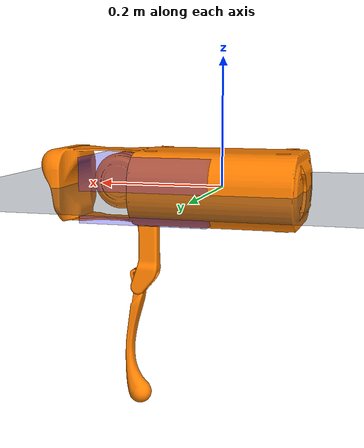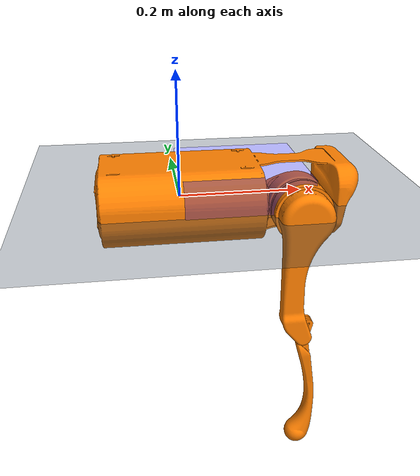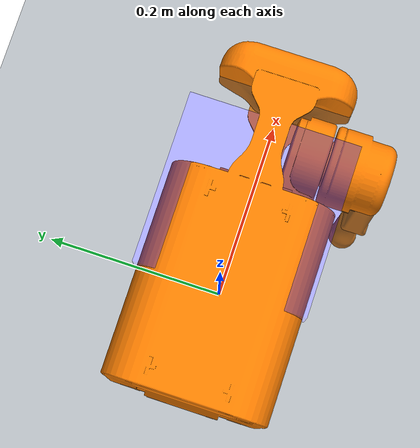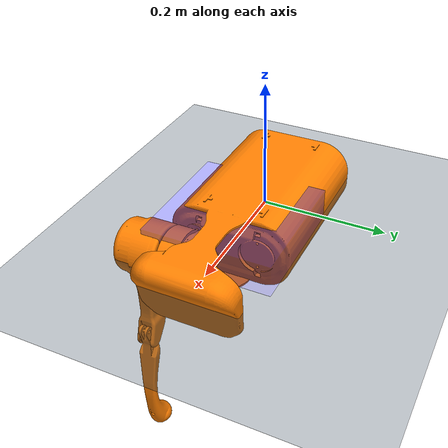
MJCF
<mujoco model="a1">
  <compiler angle="radian" meshdir="../meshes/"/>

  <asset>
    <texture type="skybox" builtin="gradient" rgb1="0.3 0.5 0.7" rgb2="0 0 0" width="512" height="512" />
    <texture name="texplane" type="2d" builtin="checker" rgb1=".2 .3 .4" rgb2=".1 0.15 0.2" width="512" height="512" mark="cross" markrgb=".8 .8 .8" />
    <material name="matplane" reflectance="0.3" texture="texplane" texrepeat="1 1" texuniform="true" />

    <mesh name="trunk" file="trunk.obj"/>
    <mesh name="hip" file="hip.obj"/>
    <mesh name="thigh_mirror" file="thigh_mirror.obj"/>
    <mesh name="calf" file="calf.obj"/>
    <mesh name="thigh" file="thigh.obj"/>
  </asset>

  <worldbody>
    <light directional="true" diffuse=".4 .4 .4" specular="0.1 0.1 0.1" pos="0 0 5.0" dir="0 0 -1" castshadow="false" />
    <light directional="true" diffuse=".6 .6 .6" specular="0.2 0.2 0.2" pos="0 0 4" dir="0 0 -1" />
    <geom name="floor" pos="0 0 0" size="15 15 1" type="plane" material="matplane" margin="0.001" condim="3" friction="1 0.005 0.0001" />

    <geom type="box" size="0.1 0.1 0.05" pos="0.1 0 0" rgba="0 0 1 0.3"/>

    <geom size="0.0005 0.0005 0.0005" type="box" contype="0" conaffinity="0" group="1" density="0"/>

    <!-- Base Link -->
        <body name="base" pos="0 0 0">
            <geom type="box" size="0.0005 0.0005 0.0005" rgba="0.5 0.5 0.5 1" />

            <!-- Floating Base Joint -->
            <body name="trunk" pos="0 0 0">
                <geom type="mesh" mesh="trunk" rgba="1 0.5 0 1" />
                <inertial pos="0.0 0.0041 -0.0005" mass="6.0" diaginertia="0.0158533 0.0377999 0.0456542" />

                <!-- IMU Joint -->
                <body name="imu_link" pos="0 0 0">
                    <joint type="fixed" />
                    <geom type="box" size="0.0005 0.0005 0.0005" rgba="1 0 0 1" />
                    <inertial pos="0 0 0" mass="0.001" diaginertia="0.0001 0.0001 0.0001" />
                </body>

                <!-- FR Hip Joint -->
                <body name="FR_hip" pos="0.1805 -0.047 0">
                    <joint name="FR_hip_joint" type="hinge" axis="1 0 0" range="-45.99 45.99" />
                    <geom type="mesh" mesh="hip" rgba="1 0.5 0 1" />
                    <inertial pos="-0.003311 -0.000635 0.000031" mass="0.696" diaginertia="0.000469 0.000807 0.000553" />

                    <!-- FR Thigh Joint -->
                    <body name="FR_thigh" pos="0 -0.0838 0">
                        <joint name="FR_thigh_joint" type="hinge" axis="0 1 0" range="-60 240" />
                        <geom type="mesh" mesh="thigh_mirror" rgba="1 0.5 0 1" />
                        <inertial pos="-0.003237 0.022327 -0.027326" mass="1.013" diaginertia="0.005529 0.005139 0.001368" />

                        <!-- FR Calf Joint -->
                        <body name="FR_calf" pos="0 0 -0.2">
                            <joint name="FR_calf_joint" type="hinge" axis="0 1 0" range="-154.5 -52.5" />
                            <geom type="mesh" mesh="calf" rgba="1 0.5 0 1" />
                            <inertial pos="0.006435 0 -0.107388" mass="0.166" diaginertia="0.002998 0.003014 0.000032" />

                            <!-- FR Foot Fixed -->
                            <body name="FR_foot" pos="0 0 -0.2">
                                <joint type="fixed" />
                                <geom type="sphere" size="0.01" rgba="1 0.5 0 1" />
                                <inertial pos="0 0 0" mass="0.06" diaginertia="0.0000096 0.0000096 0.0000096" />
                            </body>
                        </body>
                    </body>
                </body>
            </body>
        </body>
  </worldbody>

</mujoco>
